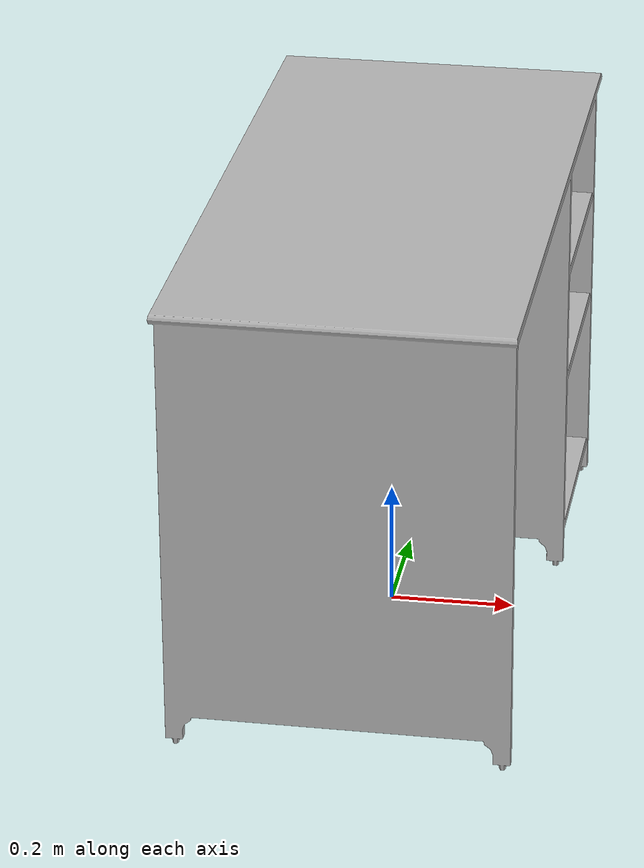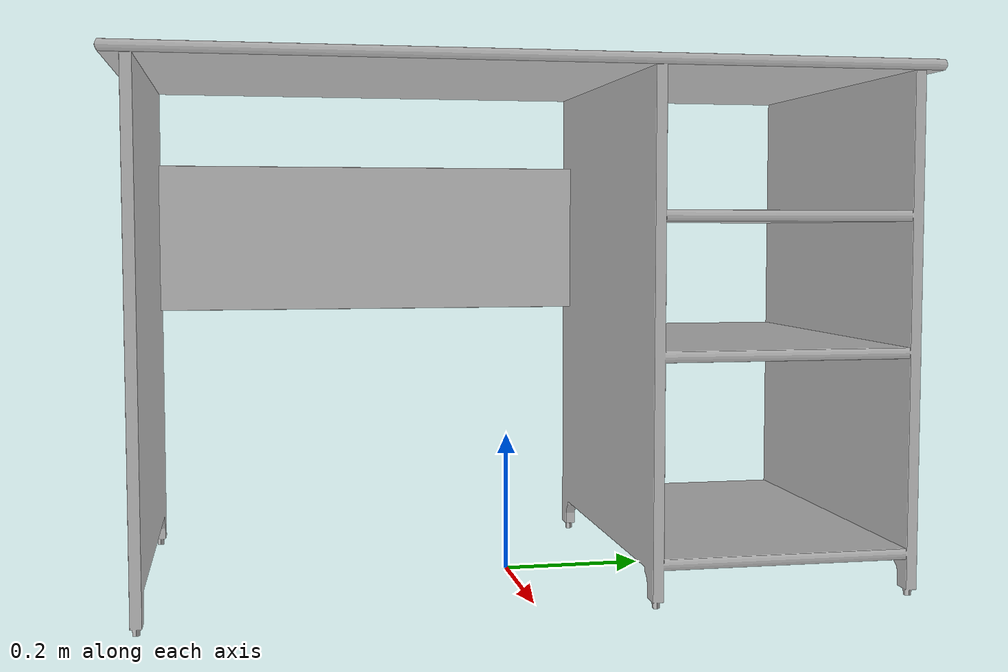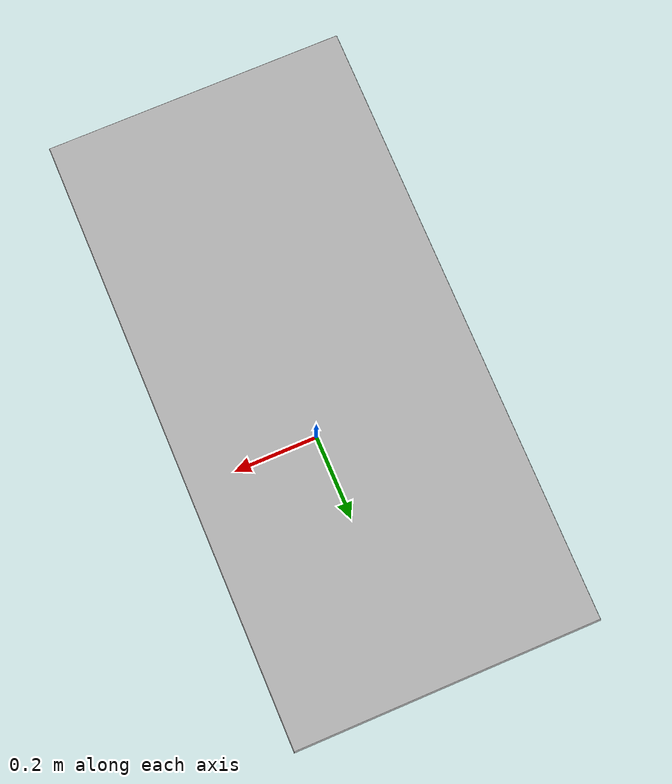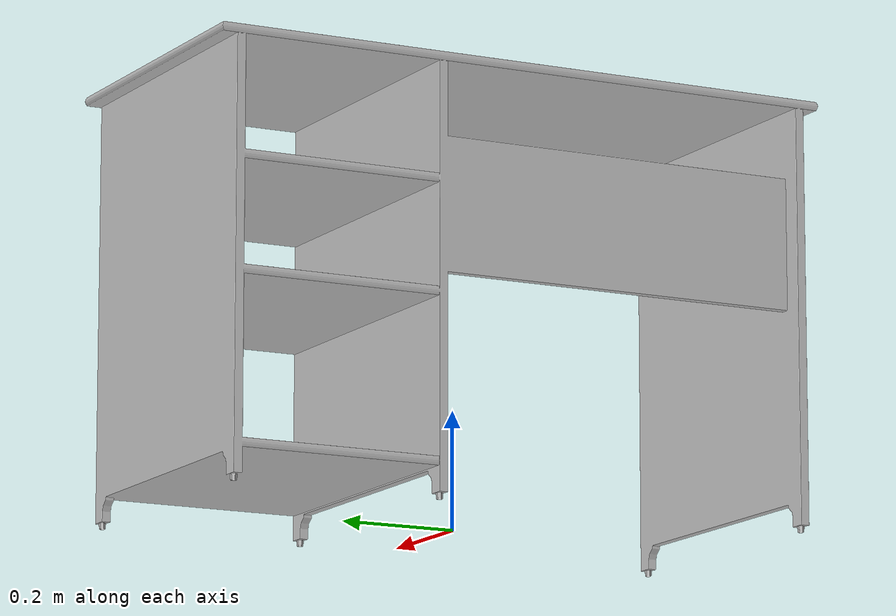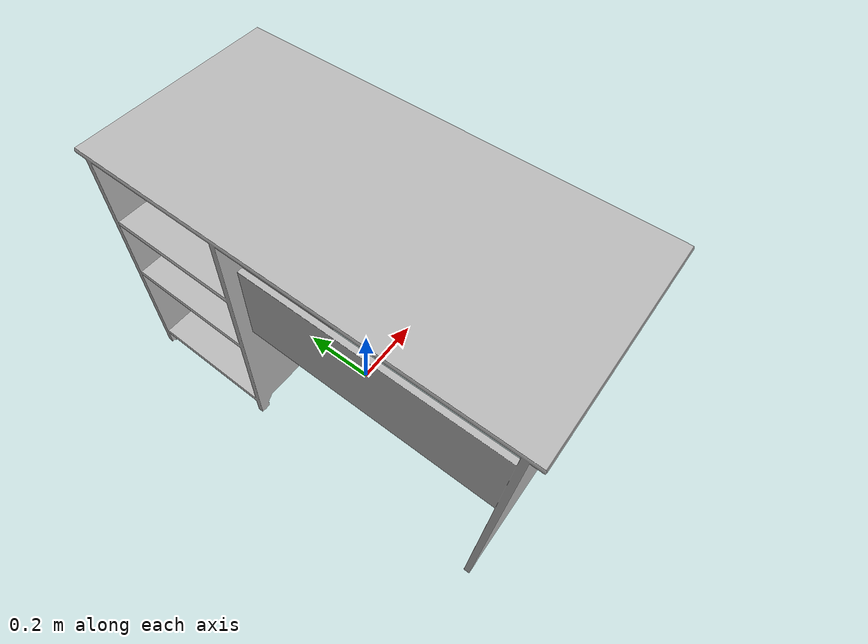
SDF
<?xml version='1.0'?>
<sdf version='1.4'>
  <model name='s__476'>
    <pose>0 0 0 0 0 0</pose>
    <static>true</static>
    <link name='link'>
      <collision name='collision'>
        <pose>0 0 0 0 0 0</pose>
        <geometry>
          <box>
            <size>0.540146 1.09988 2</size>
          </box>
        </geometry>
      </collision>
      <visual name='visual'>
        <pose>0 0 0 0 0 0</pose>
        <geometry>
          <mesh><uri>model://s__476/s__476.dae</uri></mesh>
        </geometry>
      </visual>
    </link>
  </model>
</sdf>
